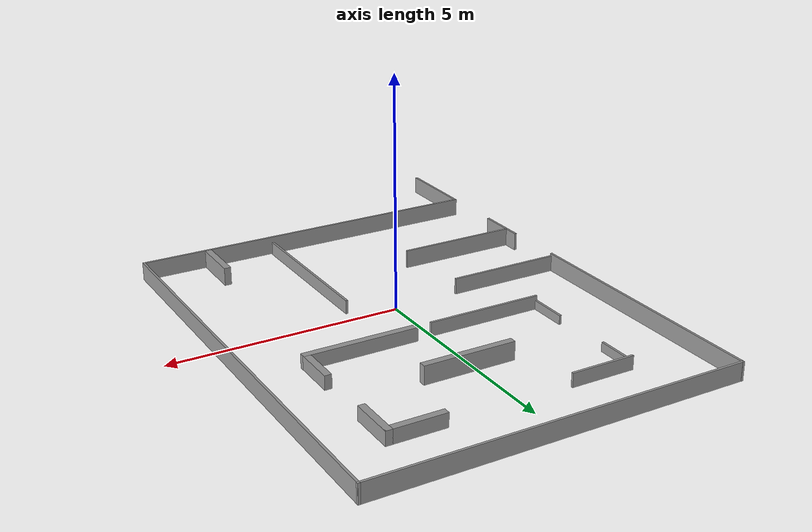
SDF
<?xml version='1.0'?>
<sdf version='1.6'>
  <model name='Labyrinth'>
    <link name='Wall_0'>
      <pose frame=''>0.016546 -4.05212 0 0 0 -0.000316</pose>
      <self_collide>0</self_collide>
      <enable_wind>0</enable_wind>
      <kinematic>1</kinematic>
      <gravity>1</gravity>
      <inertial>
        <mass>1</mass>
        <pose frame=''>0 0 0 0 -0 0</pose>
        <inertia>
          <ixx>1</ixx>
          <ixy>0</ixy>
          <ixz>0</ixz>
          <iyy>1</iyy>
          <iyz>0</iyz>
          <izz>1</izz>
        </inertia>
      </inertial>
      <visual name='Wall_0_Visual'>
        <pose frame=''>0 0 0.2 0 -0 0</pose>
        <geometry>
          <box>
            <size>7.96912 0.05 0.4</size>
          </box>
        </geometry>
        <material>
          <script>
            <uri>file://media/materials/scripts/gazebo.material</uri>
            <name>Gazebo/Grey</name>
          </script>
          <ambient>1 1 1 1</ambient>
          <shader type='vertex'>
            <normal_map>__default__</normal_map>
          </shader>
        </material>
        <meta>
          <layer>0</layer>
        </meta>
        <transparency>0</transparency>
        <cast_shadows>1</cast_shadows>
      </visual>
      <collision name='Wall_0_Collision'>
        <laser_retro>0</laser_retro>
        <max_contacts>10</max_contacts>
        <pose frame=''>0 0 0.2 0 -0 0</pose>
        <geometry>
          <box>
            <size>7.96912 0.05 0.4</size>
          </box>
        </geometry>
        <surface>
          <friction>
            <ode>
              <mu>1</mu>
              <mu2>1</mu2>
              <fdir1>0 0 0</fdir1>
              <slip1>0</slip1>
              <slip2>0</slip2>
            </ode>
            <torsional>
              <coefficient>1</coefficient>
              <patch_radius>0</patch_radius>
              <surface_radius>0</surface_radius>
              <use_patch_radius>1</use_patch_radius>
              <ode>
                <slip>0</slip>
              </ode>
            </torsional>
          </friction>
          <bounce>
            <restitution_coefficient>0</restitution_coefficient>
            <threshold>1e+06</threshold>
          </bounce>
          <contact>
            <collide_without_contact>0</collide_without_contact>
            <collide_without_contact_bitmask>1</collide_without_contact_bitmask>
            <collide_bitmask>1</collide_bitmask>
            <ode>
              <soft_cfm>0</soft_cfm>
              <soft_erp>0.2</soft_erp>
              <kp>1e+13</kp>
              <kd>1</kd>
              <max_vel>0.01</max_vel>
              <min_depth>0</min_depth>
            </ode>
            <bullet>
              <split_impulse>1</split_impulse>
              <split_impulse_penetration_threshold>-0.01</split_impulse_penetration_threshold>
              <soft_cfm>0</soft_cfm>
              <soft_erp>0.2</soft_erp>
              <kp>1e+13</kp>
              <kd>1</kd>
            </bullet>
          </contact>
        </surface>
      </collision>
    </link>
    <link name='Wall_10'>
      <pose frame=''>-2.60801 -1.78987 0 0 -0 0</pose>
      <self_collide>0</self_collide>
      <enable_wind>0</enable_wind>
      <kinematic>1</kinematic>
      <gravity>1</gravity>
      <inertial>
        <mass>1</mass>
        <pose frame=''>0 0 0 0 -0 0</pose>
        <inertia>
          <ixx>1</ixx>
          <ixy>0</ixy>
          <ixz>0</ixz>
          <iyy>1</iyy>
          <iyz>0</iyz>
          <izz>1</izz>
        </inertia>
      </inertial>
      <visual name='Wall_10_Visual'>
        <pose frame=''>0 0 0.2 0 -0 0</pose>
        <geometry>
          <box>
            <size>2.65049 0.05 0.4</size>
          </box>
        </geometry>
        <material>
          <script>
            <uri>file://media/materials/scripts/gazebo.material</uri>
            <name>Gazebo/Grey</name>
          </script>
          <ambient>1 1 1 1</ambient>
          <shader type='vertex'>
            <normal_map>__default__</normal_map>
          </shader>
        </material>
        <meta>
          <layer>0</layer>
        </meta>
        <transparency>0</transparency>
        <cast_shadows>1</cast_shadows>
      </visual>
      <collision name='Wall_10_Collision'>
        <laser_retro>0</laser_retro>
        <max_contacts>10</max_contacts>
        <pose frame=''>0 0 0.2 0 -0 0</pose>
        <geometry>
          <box>
            <size>2.65049 0.05 0.4</size>
          </box>
        </geometry>
        <surface>
          <friction>
            <ode>
              <mu>1</mu>
              <mu2>1</mu2>
              <fdir1>0 0 0</fdir1>
              <slip1>0</slip1>
              <slip2>0</slip2>
            </ode>
            <torsional>
              <coefficient>1</coefficient>
              <patch_radius>0</patch_radius>
              <surface_radius>0</surface_radius>
              <use_patch_radius>1</use_patch_radius>
              <ode>
                <slip>0</slip>
              </ode>
            </torsional>
          </friction>
          <bounce>
            <restitution_coefficient>0</restitution_coefficient>
            <threshold>1e+06</threshold>
          </bounce>
          <contact>
            <collide_without_contact>0</collide_without_contact>
            <collide_without_contact_bitmask>1</collide_without_contact_bitmask>
            <collide_bitmask>1</collide_bitmask>
            <ode>
              <soft_cfm>0</soft_cfm>
              <soft_erp>0.2</soft_erp>
              <kp>1e+13</kp>
              <kd>1</kd>
              <max_vel>0.01</max_vel>
              <min_depth>0</min_depth>
            </ode>
            <bullet>
              <split_impulse>1</split_impulse>
              <split_impulse_penetration_threshold>-0.01</split_impulse_penetration_threshold>
              <soft_cfm>0</soft_cfm>
              <soft_erp>0.2</soft_erp>
              <kp>1e+13</kp>
              <kd>1</kd>
            </bullet>
          </contact>
        </surface>
      </collision>
    </link>
    <link name='Wall_12'>
      <pose frame=''>-1.83302 4.53513 0 0 -0 3.14159</pose>
      <self_collide>0</self_collide>
      <enable_wind>0</enable_wind>
      <kinematic>1</kinematic>
      <gravity>1</gravity>
      <inertial>
        <mass>1</mass>
        <pose frame=''>0 0 0 0 -0 0</pose>
        <inertia>
          <ixx>1</ixx>
          <ixy>0</ixy>
          <ixz>0</ixz>
          <iyy>1</iyy>
          <iyz>0</iyz>
          <izz>1</izz>
        </inertia>
      </inertial>
      <visual name='Wall_12_Visual'>
        <pose frame=''>0 0 0.15 0 -0 0</pose>
        <geometry>
          <box>
            <size>1.4 0.05 0.3</size>
          </box>
        </geometry>
        <material>
          <script>
            <uri>file://media/materials/scripts/gazebo.material</uri>
            <name>Gazebo/Grey</name>
          </script>
          <ambient>1 1 1 1</ambient>
          <shader type='vertex'>
            <normal_map>__default__</normal_map>
          </shader>
        </material>
        <meta>
          <layer>0</layer>
        </meta>
        <transparency>0</transparency>
        <cast_shadows>1</cast_shadows>
      </visual>
      <collision name='Wall_12_Collision'>
        <laser_retro>0</laser_retro>
        <max_contacts>10</max_contacts>
        <pose frame=''>0 0 0.15 0 -0 0</pose>
        <geometry>
          <box>
            <size>1.4 0.05 0.3</size>
          </box>
        </geometry>
        <surface>
          <friction>
            <ode>
              <mu>1</mu>
              <mu2>1</mu2>
              <fdir1>0 0 0</fdir1>
              <slip1>0</slip1>
              <slip2>0</slip2>
            </ode>
            <torsional>
              <coefficient>1</coefficient>
              <patch_radius>0</patch_radius>
              <surface_radius>0</surface_radius>
              <use_patch_radius>1</use_patch_radius>
              <ode>
                <slip>0</slip>
              </ode>
            </torsional>
          </friction>
          <bounce>
            <restitution_coefficient>0</restitution_coefficient>
            <threshold>1e+06</threshold>
          </bounce>
          <contact>
            <collide_without_contact>0</collide_without_contact>
            <collide_without_contact_bitmask>1</collide_without_contact_bitmask>
            <collide_bitmask>1</collide_bitmask>
            <ode>
              <soft_cfm>0</soft_cfm>
              <soft_erp>0.2</soft_erp>
              <kp>1e+13</kp>
              <kd>1</kd>
              <max_vel>0.01</max_vel>
              <min_depth>0</min_depth>
            </ode>
            <bullet>
              <split_impulse>1</split_impulse>
              <split_impulse_penetration_threshold>-0.01</split_impulse_penetration_threshold>
              <soft_cfm>0</soft_cfm>
              <soft_erp>0.2</soft_erp>
              <kp>1e+13</kp>
              <kd>1</kd>
            </bullet>
          </contact>
        </surface>
      </collision>
    </link>
    <link name='Wall_13'>
      <pose frame=''>-2.50801 4.11013 0 0 0 -1.5708</pose>
      <self_collide>0</self_collide>
      <enable_wind>0</enable_wind>
      <kinematic>1</kinematic>
      <gravity>1</gravity>
      <inertial>
        <mass>1</mass>
        <pose frame=''>0 0 0 0 -0 0</pose>
        <inertia>
          <ixx>1</ixx>
          <ixy>0</ixy>
          <ixz>0</ixz>
          <iyy>1</iyy>
          <iyz>0</iyz>
          <izz>1</izz>
        </inertia>
      </inertial>
      <visual name='Wall_13_Visual'>
        <pose frame=''>0 0 0.1 0 -0 0</pose>
        <geometry>
          <box>
            <size>0.9 0.05 0.2</size>
          </box>
        </geometry>
        <material>
          <script>
            <uri>file://media/materials/scripts/gazebo.material</uri>
            <name>Gazebo/Grey</name>
          </script>
          <ambient>1 1 1 1</ambient>
          <shader type='vertex'>
            <normal_map>__default__</normal_map>
          </shader>
        </material>
        <meta>
          <layer>0</layer>
        </meta>
        <transparency>0</transparency>
        <cast_shadows>1</cast_shadows>
      </visual>
      <collision name='Wall_13_Collision'>
        <laser_retro>0</laser_retro>
        <max_contacts>10</max_contacts>
        <pose frame=''>0 0 0.1 0 -0 0</pose>
        <geometry>
          <box>
            <size>0.9 0.05 0.2</size>
          </box>
        </geometry>
        <surface>
          <friction>
            <ode>
              <mu>1</mu>
              <mu2>1</mu2>
              <fdir1>0 0 0</fdir1>
              <slip1>0</slip1>
              <slip2>0</slip2>
            </ode>
            <torsional>
              <coefficient>1</coefficient>
              <patch_radius>0</patch_radius>
              <surface_radius>0</surface_radius>
              <use_patch_radius>1</use_patch_radius>
              <ode>
                <slip>0</slip>
              </ode>
            </torsional>
          </friction>
          <bounce>
            <restitution_coefficient>0</restitution_coefficient>
            <threshold>1e+06</threshold>
          </bounce>
          <contact>
            <collide_without_contact>0</collide_without_contact>
            <collide_without_contact_bitmask>1</collide_without_contact_bitmask>
            <collide_bitmask>1</collide_bitmask>
            <ode>
              <soft_cfm>0</soft_cfm>
              <soft_erp>0.2</soft_erp>
              <kp>1e+13</kp>
              <kd>1</kd>
              <max_vel>0.01</max_vel>
              <min_depth>0</min_depth>
            </ode>
            <bullet>
              <split_impulse>1</split_impulse>
              <split_impulse_penetration_threshold>-0.01</split_impulse_penetration_threshold>
              <soft_cfm>0</soft_cfm>
              <soft_erp>0.2</soft_erp>
              <kp>1e+13</kp>
              <kd>1</kd>
            </bullet>
          </contact>
        </surface>
      </collision>
    </link>
    <link name='Wall_15'>
      <pose frame=''>2.17498 4.55313 0 0 -0 0</pose>
      <self_collide>0</self_collide>
      <enable_wind>0</enable_wind>
      <kinematic>1</kinematic>
      <gravity>1</gravity>
      <inertial>
        <mass>1</mass>
        <pose frame=''>0 0 0 0 -0 0</pose>
        <inertia>
          <ixx>1</ixx>
          <ixy>0</ixy>
          <ixz>0</ixz>
          <iyy>1</iyy>
          <iyz>0</iyz>
          <izz>1</izz>
        </inertia>
      </inertial>
      <visual name='Wall_15_Visual'>
        <pose frame=''>0 0 0.15 0 -0 0</pose>
        <geometry>
          <box>
            <size>1.25 0.15 0.3</size>
          </box>
        </geometry>
        <material>
          <script>
            <uri>file://media/materials/scripts/gazebo.material</uri>
            <name>Gazebo/Grey</name>
          </script>
          <ambient>1 1 1 1</ambient>
          <shader type='vertex'>
            <normal_map>__default__</normal_map>
          </shader>
        </material>
        <meta>
          <layer>0</layer>
        </meta>
        <transparency>0</transparency>
        <cast_shadows>1</cast_shadows>
      </visual>
      <collision name='Wall_15_Collision'>
        <laser_retro>0</laser_retro>
        <max_contacts>10</max_contacts>
        <pose frame=''>0 0 0.15 0 -0 0</pose>
        <geometry>
          <box>
            <size>1.25 0.15 0.3</size>
          </box>
        </geometry>
        <surface>
          <friction>
            <ode>
              <mu>1</mu>
              <mu2>1</mu2>
              <fdir1>0 0 0</fdir1>
              <slip1>0</slip1>
              <slip2>0</slip2>
            </ode>
            <torsional>
              <coefficient>1</coefficient>
              <patch_radius>0</patch_radius>
              <surface_radius>0</surface_radius>
              <use_patch_radius>1</use_patch_radius>
              <ode>
                <slip>0</slip>
              </ode>
            </torsional>
          </friction>
          <bounce>
            <restitution_coefficient>0</restitution_coefficient>
            <threshold>1e+06</threshold>
          </bounce>
          <contact>
            <collide_without_contact>0</collide_without_contact>
            <collide_without_contact_bitmask>1</collide_without_contact_bitmask>
            <collide_bitmask>1</collide_bitmask>
            <ode>
              <soft_cfm>0</soft_cfm>
              <soft_erp>0.2</soft_erp>
              <kp>1e+13</kp>
              <kd>1</kd>
              <max_vel>0.01</max_vel>
              <min_depth>0</min_depth>
            </ode>
            <bullet>
              <split_impulse>1</split_impulse>
              <split_impulse_penetration_threshold>-0.01</split_impulse_penetration_threshold>
              <soft_cfm>0</soft_cfm>
              <soft_erp>0.2</soft_erp>
              <kp>1e+13</kp>
              <kd>1</kd>
            </bullet>
          </contact>
        </surface>
      </collision>
    </link>
    <link name='Wall_16'>
      <pose frame=''>2.72499 4.12813 0 0 0 -1.5708</pose>
      <self_collide>0</self_collide>
      <enable_wind>0</enable_wind>
      <kinematic>1</kinematic>
      <gravity>1</gravity>
      <inertial>
        <mass>1</mass>
        <pose frame=''>0 0 0 0 -0 0</pose>
        <inertia>
          <ixx>1</ixx>
          <ixy>0</ixy>
          <ixz>0</ixz>
          <iyy>1</iyy>
          <iyz>0</iyz>
          <izz>1</izz>
        </inertia>
      </inertial>
      <visual name='Wall_16_Visual'>
        <pose frame=''>0 0 0.15 0 -0 0</pose>
        <geometry>
          <box>
            <size>1 0.15 0.3</size>
          </box>
        </geometry>
        <material>
          <script>
            <uri>file://media/materials/scripts/gazebo.material</uri>
            <name>Gazebo/Grey</name>
          </script>
          <ambient>1 1 1 1</ambient>
          <shader type='vertex'>
            <normal_map>__default__</normal_map>
          </shader>
        </material>
        <meta>
          <layer>0</layer>
        </meta>
        <transparency>0</transparency>
        <cast_shadows>1</cast_shadows>
      </visual>
      <collision name='Wall_16_Collision'>
        <laser_retro>0</laser_retro>
        <max_contacts>10</max_contacts>
        <pose frame=''>0 0 0.15 0 -0 0</pose>
        <geometry>
          <box>
            <size>1 0.15 0.3</size>
          </box>
        </geometry>
        <surface>
          <friction>
            <ode>
              <mu>1</mu>
              <mu2>1</mu2>
              <fdir1>0 0 0</fdir1>
              <slip1>0</slip1>
              <slip2>0</slip2>
            </ode>
            <torsional>
              <coefficient>1</coefficient>
              <patch_radius>0</patch_radius>
              <surface_radius>0</surface_radius>
              <use_patch_radius>1</use_patch_radius>
              <ode>
                <slip>0</slip>
              </ode>
            </torsional>
          </friction>
          <bounce>
            <restitution_coefficient>0</restitution_coefficient>
            <threshold>1e+06</threshold>
          </bounce>
          <contact>
            <collide_without_contact>0</collide_without_contact>
            <collide_without_contact_bitmask>1</collide_without_contact_bitmask>
            <collide_bitmask>1</collide_bitmask>
            <ode>
              <soft_cfm>0</soft_cfm>
              <soft_erp>0.2</soft_erp>
              <kp>1e+13</kp>
              <kd>1</kd>
              <max_vel>0.01</max_vel>
              <min_depth>0</min_depth>
            </ode>
            <bullet>
              <split_impulse>1</split_impulse>
              <split_impulse_penetration_threshold>-0.01</split_impulse_penetration_threshold>
              <soft_cfm>0</soft_cfm>
              <soft_erp>0.2</soft_erp>
              <kp>1e+13</kp>
              <kd>1</kd>
            </bullet>
          </contact>
        </surface>
      </collision>
    </link>
    <link name='Wall_18'>
      <pose frame=''>-1.25802 1.42763 0 0 -0 3.14119</pose>
      <self_collide>0</self_collide>
      <enable_wind>0</enable_wind>
      <kinematic>1</kinematic>
      <gravity>1</gravity>
      <inertial>
        <mass>1</mass>
        <pose frame=''>0 0 0 0 -0 0</pose>
        <inertia>
          <ixx>1</ixx>
          <ixy>0</ixy>
          <ixz>0</ixz>
          <iyy>1</iyy>
          <iyz>0</iyz>
          <izz>1</izz>
        </inertia>
      </inertial>
      <visual name='Wall_18_Visual'>
        <pose frame=''>0 0 0.15 0 -0 0</pose>
        <geometry>
          <box>
            <size>2.546 0.05 0.3</size>
          </box>
        </geometry>
        <material>
          <script>
            <uri>file://media/materials/scripts/gazebo.material</uri>
            <name>Gazebo/Grey</name>
          </script>
          <ambient>1 1 1 1</ambient>
          <shader type='vertex'>
            <normal_map>__default__</normal_map>
          </shader>
        </material>
        <meta>
          <layer>0</layer>
        </meta>
        <transparency>0</transparency>
        <cast_shadows>1</cast_shadows>
      </visual>
      <collision name='Wall_18_Collision'>
        <laser_retro>0</laser_retro>
        <max_contacts>10</max_contacts>
        <pose frame=''>0 0 0.15 0 -0 0</pose>
        <geometry>
          <box>
            <size>2.546 0.05 0.3</size>
          </box>
        </geometry>
        <surface>
          <friction>
            <ode>
              <mu>1</mu>
              <mu2>1</mu2>
              <fdir1>0 0 0</fdir1>
              <slip1>0</slip1>
              <slip2>0</slip2>
            </ode>
            <torsional>
              <coefficient>1</coefficient>
              <patch_radius>0</patch_radius>
              <surface_radius>0</surface_radius>
              <use_patch_radius>1</use_patch_radius>
              <ode>
                <slip>0</slip>
              </ode>
            </torsional>
          </friction>
          <bounce>
            <restitution_coefficient>0</restitution_coefficient>
            <threshold>1e+06</threshold>
          </bounce>
          <contact>
            <collide_without_contact>0</collide_without_contact>
            <collide_without_contact_bitmask>1</collide_without_contact_bitmask>
            <collide_bitmask>1</collide_bitmask>
            <ode>
              <soft_cfm>0</soft_cfm>
              <soft_erp>0.2</soft_erp>
              <kp>1e+13</kp>
              <kd>1</kd>
              <max_vel>0.01</max_vel>
              <min_depth>0</min_depth>
            </ode>
            <bullet>
              <split_impulse>1</split_impulse>
              <split_impulse_penetration_threshold>-0.01</split_impulse_penetration_threshold>
              <soft_cfm>0</soft_cfm>
              <soft_erp>0.2</soft_erp>
              <kp>1e+13</kp>
              <kd>1</kd>
            </bullet>
          </contact>
        </surface>
      </collision>
    </link>
    <link name='Wall_19'>
      <pose frame=''>-2.50602 1.85013 0 0 -0 1.5708</pose>
      <self_collide>0</self_collide>
      <enable_wind>0</enable_wind>
      <kinematic>1</kinematic>
      <gravity>1</gravity>
      <inertial>
        <mass>1</mass>
        <pose frame=''>0 0 0 0 -0 0</pose>
        <inertia>
          <ixx>1</ixx>
          <ixy>0</ixy>
          <ixz>0</ixz>
          <iyy>1</iyy>
          <iyz>0</iyz>
          <izz>1</izz>
        </inertia>
      </inertial>
      <visual name='Wall_19_Visual'>
        <pose frame=''>0 0 0.1 0 -0 0</pose>
        <geometry>
          <box>
            <size>0.894436 0.05 0.2</size>
          </box>
        </geometry>
        <material>
          <script>
            <uri>file://media/materials/scripts/gazebo.material</uri>
            <name>Gazebo/Grey</name>
          </script>
          <ambient>1 1 1 1</ambient>
          <shader type='vertex'>
            <normal_map>__default__</normal_map>
          </shader>
        </material>
        <meta>
          <layer>0</layer>
        </meta>
        <transparency>0</transparency>
        <cast_shadows>1</cast_shadows>
      </visual>
      <collision name='Wall_19_Collision'>
        <laser_retro>0</laser_retro>
        <max_contacts>10</max_contacts>
        <pose frame=''>0 0 0.1 0 -0 0</pose>
        <geometry>
          <box>
            <size>0.894436 0.05 0.2</size>
          </box>
        </geometry>
        <surface>
          <friction>
            <ode>
              <mu>1</mu>
              <mu2>1</mu2>
              <fdir1>0 0 0</fdir1>
              <slip1>0</slip1>
              <slip2>0</slip2>
            </ode>
            <torsional>
              <coefficient>1</coefficient>
              <patch_radius>0</patch_radius>
              <surface_radius>0</surface_radius>
              <use_patch_radius>1</use_patch_radius>
              <ode>
                <slip>0</slip>
              </ode>
            </torsional>
          </friction>
          <bounce>
            <restitution_coefficient>0</restitution_coefficient>
            <threshold>1e+06</threshold>
          </bounce>
          <contact>
            <collide_without_contact>0</collide_without_contact>
            <collide_without_contact_bitmask>1</collide_without_contact_bitmask>
            <collide_bitmask>1</collide_bitmask>
            <ode>
              <soft_cfm>0</soft_cfm>
              <soft_erp>0.2</soft_erp>
              <kp>1e+13</kp>
              <kd>1</kd>
              <max_vel>0.01</max_vel>
              <min_depth>0</min_depth>
            </ode>
            <bullet>
              <split_impulse>1</split_impulse>
              <split_impulse_penetration_threshold>-0.01</split_impulse_penetration_threshold>
              <soft_cfm>0</soft_cfm>
              <soft_erp>0.2</soft_erp>
              <kp>1e+13</kp>
              <kd>1</kd>
            </bullet>
          </contact>
        </surface>
      </collision>
    </link>
    <link name='Wall_21'>
      <pose frame=''>1.57299 1.42963 0 0 -0 0.001292</pose>
      <self_collide>0</self_collide>
      <enable_wind>0</enable_wind>
      <kinematic>1</kinematic>
      <gravity>1</gravity>
      <inertial>
        <mass>1</mass>
        <pose frame=''>0 0 0 0 -0 0</pose>
        <inertia>
          <ixx>1</ixx>
          <ixy>0</ixy>
          <ixz>0</ixz>
          <iyy>1</iyy>
          <iyz>0</iyz>
          <izz>1</izz>
        </inertia>
      </inertial>
      <visual name='Wall_21_Visual'>
        <pose frame=''>0 0 0.15 0 -0 0</pose>
        <geometry>
          <box>
            <size>2.47225 0.15 0.3</size>
          </box>
        </geometry>
        <material>
          <script>
            <uri>file://media/materials/scripts/gazebo.material</uri>
            <name>Gazebo/Grey</name>
          </script>
          <ambient>1 1 1 1</ambient>
          <shader type='vertex'>
            <normal_map>__default__</normal_map>
          </shader>
        </material>
        <meta>
          <layer>0</layer>
        </meta>
        <transparency>0</transparency>
        <cast_shadows>1</cast_shadows>
      </visual>
      <collision name='Wall_21_Collision'>
        <laser_retro>0</laser_retro>
        <max_contacts>10</max_contacts>
        <pose frame=''>0 0 0.15 0 -0 0</pose>
        <geometry>
          <box>
            <size>2.47225 0.15 0.3</size>
          </box>
        </geometry>
        <surface>
          <friction>
            <ode>
              <mu>1</mu>
              <mu2>1</mu2>
              <fdir1>0 0 0</fdir1>
              <slip1>0</slip1>
              <slip2>0</slip2>
            </ode>
            <torsional>
              <coefficient>1</coefficient>
              <patch_radius>0</patch_radius>
              <surface_radius>0</surface_radius>
              <use_patch_radius>1</use_patch_radius>
              <ode>
                <slip>0</slip>
              </ode>
            </torsional>
          </friction>
          <bounce>
            <restitution_coefficient>0</restitution_coefficient>
            <threshold>1e+06</threshold>
          </bounce>
          <contact>
            <collide_without_contact>0</collide_without_contact>
            <collide_without_contact_bitmask>1</collide_without_contact_bitmask>
            <collide_bitmask>1</collide_bitmask>
            <ode>
              <soft_cfm>0</soft_cfm>
              <soft_erp>0.2</soft_erp>
              <kp>1e+13</kp>
              <kd>1</kd>
              <max_vel>0.01</max_vel>
              <min_depth>0</min_depth>
            </ode>
            <bullet>
              <split_impulse>1</split_impulse>
              <split_impulse_penetration_threshold>-0.01</split_impulse_penetration_threshold>
              <soft_cfm>0</soft_cfm>
              <soft_erp>0.2</soft_erp>
              <kp>1e+13</kp>
              <kd>1</kd>
            </bullet>
          </contact>
        </surface>
      </collision>
    </link>
    <link name='Wall_22'>
      <pose frame=''>2.73549 1.86513 0 0 -0 1.56734</pose>
      <self_collide>0</self_collide>
      <enable_wind>0</enable_wind>
      <kinematic>1</kinematic>
      <gravity>1</gravity>
      <inertial>
        <mass>1</mass>
        <pose frame=''>0 0 0 0 -0 0</pose>
        <inertia>
          <ixx>1</ixx>
          <ixy>0</ixy>
          <ixz>0</ixz>
          <iyy>1</iyy>
          <iyz>0</iyz>
          <izz>1</izz>
        </inertia>
      </inertial>
      <visual name='Wall_22_Visual'>
        <pose frame=''>0 0 0.15 0 -0 0</pose>
        <geometry>
          <box>
            <size>1.0175 0.15 0.3</size>
          </box>
        </geometry>
        <material>
          <script>
            <uri>file://media/materials/scripts/gazebo.material</uri>
            <name>Gazebo/Grey</name>
          </script>
          <ambient>1 1 1 1</ambient>
          <shader type='vertex'>
            <normal_map>__default__</normal_map>
          </shader>
        </material>
        <meta>
          <layer>0</layer>
        </meta>
        <transparency>0</transparency>
        <cast_shadows>1</cast_shadows>
      </visual>
      <collision name='Wall_22_Collision'>
        <laser_retro>0</laser_retro>
        <max_contacts>10</max_contacts>
        <pose frame=''>0 0 0.15 0 -0 0</pose>
        <geometry>
          <box>
            <size>1.0175 0.15 0.3</size>
          </box>
        </geometry>
        <surface>
          <friction>
            <ode>
              <mu>1</mu>
              <mu2>1</mu2>
              <fdir1>0 0 0</fdir1>
              <slip1>0</slip1>
              <slip2>0</slip2>
            </ode>
            <torsional>
              <coefficient>1</coefficient>
              <patch_radius>0</patch_radius>
              <surface_radius>0</surface_radius>
              <use_patch_radius>1</use_patch_radius>
              <ode>
                <slip>0</slip>
              </ode>
            </torsional>
          </friction>
          <bounce>
            <restitution_coefficient>0</restitution_coefficient>
            <threshold>1e+06</threshold>
          </bounce>
          <contact>
            <collide_without_contact>0</collide_without_contact>
            <collide_without_contact_bitmask>1</collide_without_contact_bitmask>
            <collide_bitmask>1</collide_bitmask>
            <ode>
              <soft_cfm>0</soft_cfm>
              <soft_erp>0.2</soft_erp>
              <kp>1e+13</kp>
              <kd>1</kd>
              <max_vel>0.01</max_vel>
              <min_depth>0</min_depth>
            </ode>
            <bullet>
              <split_impulse>1</split_impulse>
              <split_impulse_penetration_threshold>-0.01</split_impulse_penetration_threshold>
              <soft_cfm>0</soft_cfm>
              <soft_erp>0.2</soft_erp>
              <kp>1e+13</kp>
              <kd>1</kd>
            </bullet>
          </contact>
        </surface>
      </collision>
    </link>
    <link name='Wall_24'>
      <pose frame=''>0.158985 3.04213 0 0 -0 3.14159</pose>
      <self_collide>0</self_collide>
      <enable_wind>0</enable_wind>
      <kinematic>1</kinematic>
      <gravity>1</gravity>
      <inertial>
        <mass>1</mass>
        <pose frame=''>0 0 0 0 -0 0</pose>
        <inertia>
          <ixx>1</ixx>
          <ixy>0</ixy>
          <ixz>0</ixz>
          <iyy>1</iyy>
          <iyz>0</iyz>
          <izz>1</izz>
        </inertia>
      </inertial>
      <visual name='Wall_24_Visual'>
        <pose frame=''>0 0 0.2 0 -0 0</pose>
        <geometry>
          <box>
            <size>2 0.15 0.4</size>
          </box>
        </geometry>
        <material>
          <script>
            <uri>file://media/materials/scripts/gazebo.material</uri>
            <name>Gazebo/Grey</name>
          </script>
          <ambient>1 1 1 1</ambient>
          <shader type='vertex'>
            <normal_map>__default__</normal_map>
          </shader>
        </material>
        <meta>
          <layer>0</layer>
        </meta>
        <transparency>0</transparency>
        <cast_shadows>1</cast_shadows>
      </visual>
      <collision name='Wall_24_Collision'>
        <laser_retro>0</laser_retro>
        <max_contacts>10</max_contacts>
        <pose frame=''>0 0 0.2 0 -0 0</pose>
        <geometry>
          <box>
            <size>2 0.15 0.4</size>
          </box>
        </geometry>
        <surface>
          <friction>
            <ode>
              <mu>1</mu>
              <mu2>1</mu2>
              <fdir1>0 0 0</fdir1>
              <slip1>0</slip1>
              <slip2>0</slip2>
            </ode>
            <torsional>
              <coefficient>1</coefficient>
              <patch_radius>0</patch_radius>
              <surface_radius>0</surface_radius>
              <use_patch_radius>1</use_patch_radius>
              <ode>
                <slip>0</slip>
              </ode>
            </torsional>
          </friction>
          <bounce>
            <restitution_coefficient>0</restitution_coefficient>
            <threshold>1e+06</threshold>
          </bounce>
          <contact>
            <collide_without_contact>0</collide_without_contact>
            <collide_without_contact_bitmask>1</collide_without_contact_bitmask>
            <collide_bitmask>1</collide_bitmask>
            <ode>
              <soft_cfm>0</soft_cfm>
              <soft_erp>0.2</soft_erp>
              <kp>1e+13</kp>
              <kd>1</kd>
              <max_vel>0.01</max_vel>
              <min_depth>0</min_depth>
            </ode>
            <bullet>
              <split_impulse>1</split_impulse>
              <split_impulse_penetration_threshold>-0.01</split_impulse_penetration_threshold>
              <soft_cfm>0</soft_cfm>
              <soft_erp>0.2</soft_erp>
              <kp>1e+13</kp>
              <kd>1</kd>
            </bullet>
          </contact>
        </surface>
      </collision>
    </link>
    <link name='Wall_26'>
      <pose frame=''>0.971985 -2.13787 0 0 0 -1.5708</pose>
      <self_collide>0</self_collide>
      <enable_wind>0</enable_wind>
      <kinematic>1</kinematic>
      <gravity>1</gravity>
      <inertial>
        <mass>1</mass>
        <pose frame=''>0 0 0 0 -0 0</pose>
        <inertia>
          <ixx>1</ixx>
          <ixy>0</ixy>
          <ixz>0</ixz>
          <iyy>1</iyy>
          <iyz>0</iyz>
          <izz>1</izz>
        </inertia>
      </inertial>
      <visual name='Wall_26_Visual'>
        <pose frame=''>0 0 0.15 0 -0 0</pose>
        <geometry>
          <box>
            <size>3.65018 0.05 0.3</size>
          </box>
        </geometry>
        <material>
          <script>
            <uri>file://media/materials/scripts/gazebo.material</uri>
            <name>Gazebo/Grey</name>
          </script>
          <ambient>1 1 1 1</ambient>
          <shader type='vertex'>
            <normal_map>__default__</normal_map>
          </shader>
        </material>
        <meta>
          <layer>0</layer>
        </meta>
        <transparency>0</transparency>
        <cast_shadows>1</cast_shadows>
      </visual>
      <collision name='Wall_26_Collision'>
        <laser_retro>0</laser_retro>
        <max_contacts>10</max_contacts>
        <pose frame=''>0 0 0.15 0 -0 0</pose>
        <geometry>
          <box>
            <size>3.65018 0.05 0.3</size>
          </box>
        </geometry>
        <surface>
          <friction>
            <ode>
              <mu>1</mu>
              <mu2>1</mu2>
              <fdir1>0 0 0</fdir1>
              <slip1>0</slip1>
              <slip2>0</slip2>
            </ode>
            <torsional>
              <coefficient>1</coefficient>
              <patch_radius>0</patch_radius>
              <surface_radius>0</surface_radius>
              <use_patch_radius>1</use_patch_radius>
              <ode>
                <slip>0</slip>
              </ode>
            </torsional>
          </friction>
          <bounce>
            <restitution_coefficient>0</restitution_coefficient>
            <threshold>1e+06</threshold>
          </bounce>
          <contact>
            <collide_without_contact>0</collide_without_contact>
            <collide_without_contact_bitmask>1</collide_without_contact_bitmask>
            <collide_bitmask>1</collide_bitmask>
            <ode>
              <soft_cfm>0</soft_cfm>
              <soft_erp>0.2</soft_erp>
              <kp>1e+13</kp>
              <kd>1</kd>
              <max_vel>0.01</max_vel>
              <min_depth>0</min_depth>
            </ode>
            <bullet>
              <split_impulse>1</split_impulse>
              <split_impulse_penetration_threshold>-0.01</split_impulse_penetration_threshold>
              <soft_cfm>0</soft_cfm>
              <soft_erp>0.2</soft_erp>
              <kp>1e+13</kp>
              <kd>1</kd>
            </bullet>
          </contact>
        </surface>
      </collision>
    </link>
    <link name='Wall_28'>
      <pose frame=''>2.51148 -3.45737 0 0 0 -1.57796</pose>
      <self_collide>0</self_collide>
      <enable_wind>0</enable_wind>
      <kinematic>1</kinematic>
      <gravity>1</gravity>
      <inertial>
        <mass>1</mass>
        <pose frame=''>0 0 0 0 -0 0</pose>
        <inertia>
          <ixx>1</ixx>
          <ixy>0</ixy>
          <ixz>0</ixz>
          <iyy>1</iyy>
          <iyz>0</iyz>
          <izz>1</izz>
        </inertia>
      </inertial>
      <visual name='Wall_28_Visual'>
        <pose frame=''>0 0 0.2 0 -0 0</pose>
        <geometry>
          <box>
            <size>1.12681 0.15 0.4</size>
          </box>
        </geometry>
        <material>
          <script>
            <uri>file://media/materials/scripts/gazebo.material</uri>
            <name>Gazebo/Grey</name>
          </script>
          <ambient>1 1 1 1</ambient>
          <shader type='vertex'>
            <normal_map>__default__</normal_map>
          </shader>
        </material>
        <meta>
          <layer>0</layer>
        </meta>
        <transparency>0</transparency>
        <cast_shadows>1</cast_shadows>
      </visual>
      <collision name='Wall_28_Collision'>
        <laser_retro>0</laser_retro>
        <max_contacts>10</max_contacts>
        <pose frame=''>0 0 0.2 0 -0 0</pose>
        <geometry>
          <box>
            <size>1.12681 0.15 0.4</size>
          </box>
        </geometry>
        <surface>
          <friction>
            <ode>
              <mu>1</mu>
              <mu2>1</mu2>
              <fdir1>0 0 0</fdir1>
              <slip1>0</slip1>
              <slip2>0</slip2>
            </ode>
            <torsional>
              <coefficient>1</coefficient>
              <patch_radius>0</patch_radius>
              <surface_radius>0</surface_radius>
              <use_patch_radius>1</use_patch_radius>
              <ode>
                <slip>0</slip>
              </ode>
            </torsional>
          </friction>
          <bounce>
            <restitution_coefficient>0</restitution_coefficient>
            <threshold>1e+06</threshold>
          </bounce>
          <contact>
            <collide_without_contact>0</collide_without_contact>
            <collide_without_contact_bitmask>1</collide_without_contact_bitmask>
            <collide_bitmask>1</collide_bitmask>
            <ode>
              <soft_cfm>0</soft_cfm>
              <soft_erp>0.2</soft_erp>
              <kp>1e+13</kp>
              <kd>1</kd>
              <max_vel>0.01</max_vel>
              <min_depth>0</min_depth>
            </ode>
            <bullet>
              <split_impulse>1</split_impulse>
              <split_impulse_penetration_threshold>-0.01</split_impulse_penetration_threshold>
              <soft_cfm>0</soft_cfm>
              <soft_erp>0.2</soft_erp>
              <kp>1e+13</kp>
              <kd>1</kd>
            </bullet>
          </contact>
        </surface>
      </collision>
    </link>
    <link name='Wall_3'>
      <pose frame=''>3.97531 0.923721 0 0 -0 1.57096</pose>
      <self_collide>0</self_collide>
      <enable_wind>0</enable_wind>
      <kinematic>1</kinematic>
      <gravity>1</gravity>
      <inertial>
        <mass>1</mass>
        <pose frame=''>0 0 0 0 -0 0</pose>
        <inertia>
          <ixx>1</ixx>
          <ixy>0</ixy>
          <ixz>0</ixz>
          <iyy>1</iyy>
          <iyz>0</iyz>
          <izz>1</izz>
        </inertia>
      </inertial>
      <visual name='Wall_3_Visual'>
        <pose frame=''>0 0 0.2 0 -0 0</pose>
        <geometry>
          <box>
            <size>10.0042 0.05 0.4</size>
          </box>
        </geometry>
        <material>
          <script>
            <uri>file://media/materials/scripts/gazebo.material</uri>
            <name>Gazebo/Grey</name>
          </script>
          <ambient>1 1 1 1</ambient>
          <shader type='vertex'>
            <normal_map>__default__</normal_map>
          </shader>
        </material>
        <meta>
          <layer>0</layer>
        </meta>
        <transparency>0</transparency>
        <cast_shadows>1</cast_shadows>
      </visual>
      <collision name='Wall_3_Collision'>
        <laser_retro>0</laser_retro>
        <max_contacts>10</max_contacts>
        <pose frame=''>0 0 0.2 0 -0 0</pose>
        <geometry>
          <box>
            <size>10.0042 0.05 0.4</size>
          </box>
        </geometry>
        <surface>
          <friction>
            <ode>
              <mu>1</mu>
              <mu2>1</mu2>
              <fdir1>0 0 0</fdir1>
              <slip1>0</slip1>
              <slip2>0</slip2>
            </ode>
            <torsional>
              <coefficient>1</coefficient>
              <patch_radius>0</patch_radius>
              <surface_radius>0</surface_radius>
              <use_patch_radius>1</use_patch_radius>
              <ode>
                <slip>0</slip>
              </ode>
            </torsional>
          </friction>
          <bounce>
            <restitution_coefficient>0</restitution_coefficient>
            <threshold>1e+06</threshold>
          </bounce>
          <contact>
            <collide_without_contact>0</collide_without_contact>
            <collide_without_contact_bitmask>1</collide_without_contact_bitmask>
            <collide_bitmask>1</collide_bitmask>
            <ode>
              <soft_cfm>0</soft_cfm>
              <soft_erp>0.2</soft_erp>
              <kp>1e+13</kp>
              <kd>1</kd>
              <max_vel>0.01</max_vel>
              <min_depth>0</min_depth>
            </ode>
            <bullet>
              <split_impulse>1</split_impulse>
              <split_impulse_penetration_threshold>-0.01</split_impulse_penetration_threshold>
              <soft_cfm>0</soft_cfm>
              <soft_erp>0.2</soft_erp>
              <kp>1e+13</kp>
              <kd>1</kd>
            </bullet>
          </contact>
        </surface>
      </collision>
    </link>
    <link name='Wall_30'>
      <pose frame=''>-3.94301 -4.97587 0 0 0 -1.5708</pose>
      <self_collide>0</self_collide>
      <enable_wind>0</enable_wind>
      <kinematic>1</kinematic>
      <gravity>1</gravity>
      <inertial>
        <mass>1</mass>
        <pose frame=''>0 0 0 0 -0 0</pose>
        <inertia>
          <ixx>1</ixx>
          <ixy>0</ixy>
          <ixz>0</ixz>
          <iyy>1</iyy>
          <iyz>0</iyz>
          <izz>1</izz>
        </inertia>
      </inertial>
      <visual name='Wall_30_Visual'>
        <pose frame=''>0 0 0.2 0 -0 0</pose>
        <geometry>
          <box>
            <size>1.8999 0.05 0.4</size>
          </box>
        </geometry>
        <material>
          <script>
            <uri>file://media/materials/scripts/gazebo.material</uri>
            <name>Gazebo/Grey</name>
          </script>
          <ambient>1 1 1 1</ambient>
          <shader type='vertex'>
            <normal_map>__default__</normal_map>
          </shader>
        </material>
        <meta>
          <layer>0</layer>
        </meta>
        <transparency>0</transparency>
        <cast_shadows>1</cast_shadows>
      </visual>
      <collision name='Wall_30_Collision'>
        <laser_retro>0</laser_retro>
        <max_contacts>10</max_contacts>
        <pose frame=''>0 0 0.2 0 -0 0</pose>
        <geometry>
          <box>
            <size>1.8999 0.05 0.4</size>
          </box>
        </geometry>
        <surface>
          <friction>
            <ode>
              <mu>1</mu>
              <mu2>1</mu2>
              <fdir1>0 0 0</fdir1>
              <slip1>0</slip1>
              <slip2>0</slip2>
            </ode>
            <torsional>
              <coefficient>1</coefficient>
              <patch_radius>0</patch_radius>
              <surface_radius>0</surface_radius>
              <use_patch_radius>1</use_patch_radius>
              <ode>
                <slip>0</slip>
              </ode>
            </torsional>
          </friction>
          <bounce>
            <restitution_coefficient>0</restitution_coefficient>
            <threshold>1e+06</threshold>
          </bounce>
          <contact>
            <collide_without_contact>0</collide_without_contact>
            <collide_without_contact_bitmask>1</collide_without_contact_bitmask>
            <collide_bitmask>1</collide_bitmask>
            <ode>
              <soft_cfm>0</soft_cfm>
              <soft_erp>0.2</soft_erp>
              <kp>1e+13</kp>
              <kd>1</kd>
              <max_vel>0.01</max_vel>
              <min_depth>0</min_depth>
            </ode>
            <bullet>
              <split_impulse>1</split_impulse>
              <split_impulse_penetration_threshold>-0.01</split_impulse_penetration_threshold>
              <soft_cfm>0</soft_cfm>
              <soft_erp>0.2</soft_erp>
              <kp>1e+13</kp>
              <kd>1</kd>
            </bullet>
          </contact>
        </surface>
      </collision>
    </link>
    <link name='Wall_4'>
      <pose frame=''>1.6e-05 5.89799 0 0 0 -3.14135</pose>
      <self_collide>0</self_collide>
      <enable_wind>0</enable_wind>
      <kinematic>1</kinematic>
      <gravity>1</gravity>
      <inertial>
        <mass>1</mass>
        <pose frame=''>0 0 0 0 -0 0</pose>
        <inertia>
          <ixx>1</ixx>
          <ixy>0</ixy>
          <ixz>0</ixz>
          <iyy>1</iyy>
          <iyz>0</iyz>
          <izz>1</izz>
        </inertia>
      </inertial>
      <visual name='Wall_4_Visual'>
        <pose frame=''>0 0 0.2 0 -0 0</pose>
        <geometry>
          <box>
            <size>8.00272 0.05 0.4</size>
          </box>
        </geometry>
        <material>
          <script>
            <uri>file://media/materials/scripts/gazebo.material</uri>
            <name>Gazebo/Grey</name>
          </script>
          <ambient>1 1 1 1</ambient>
          <shader type='vertex'>
            <normal_map>__default__</normal_map>
          </shader>
        </material>
        <meta>
          <layer>0</layer>
        </meta>
        <transparency>0</transparency>
        <cast_shadows>1</cast_shadows>
      </visual>
      <collision name='Wall_4_Collision'>
        <laser_retro>0</laser_retro>
        <max_contacts>10</max_contacts>
        <pose frame=''>0 0 0.2 0 -0 0</pose>
        <geometry>
          <box>
            <size>8.00272 0.05 0.4</size>
          </box>
        </geometry>
        <surface>
          <friction>
            <ode>
              <mu>1</mu>
              <mu2>1</mu2>
              <fdir1>0 0 0</fdir1>
              <slip1>0</slip1>
              <slip2>0</slip2>
            </ode>
            <torsional>
              <coefficient>1</coefficient>
              <patch_radius>0</patch_radius>
              <surface_radius>0</surface_radius>
              <use_patch_radius>1</use_patch_radius>
              <ode>
                <slip>0</slip>
              </ode>
            </torsional>
          </friction>
          <bounce>
            <restitution_coefficient>0</restitution_coefficient>
            <threshold>1e+06</threshold>
          </bounce>
          <contact>
            <collide_without_contact>0</collide_without_contact>
            <collide_without_contact_bitmask>1</collide_without_contact_bitmask>
            <collide_bitmask>1</collide_bitmask>
            <ode>
              <soft_cfm>0</soft_cfm>
              <soft_erp>0.2</soft_erp>
              <kp>1e+13</kp>
              <kd>1</kd>
              <max_vel>0.01</max_vel>
              <min_depth>0</min_depth>
            </ode>
            <bullet>
              <split_impulse>1</split_impulse>
              <split_impulse_penetration_threshold>-0.01</split_impulse_penetration_threshold>
              <soft_cfm>0</soft_cfm>
              <soft_erp>0.2</soft_erp>
              <kp>1e+13</kp>
              <kd>1</kd>
            </bullet>
          </contact>
        </surface>
      </collision>
    </link>
    <link name='Wall_5'>
      <pose frame=''>-3.97164 2.92964 0 0 0 -1.56921</pose>
      <self_collide>0</self_collide>
      <enable_wind>0</enable_wind>
      <kinematic>1</kinematic>
      <gravity>1</gravity>
      <inertial>
        <mass>1</mass>
        <pose frame=''>0 0 0 0 -0 0</pose>
        <inertia>
          <ixx>1</ixx>
          <ixy>0</ixy>
          <ixz>0</ixz>
          <iyy>1</iyy>
          <iyz>0</iyz>
          <izz>1</izz>
        </inertia>
      </inertial>
      <visual name='Wall_5_Visual'>
        <pose frame=''>0 0 0.2 0 -0 0</pose>
        <geometry>
          <box>
            <size>5.99128 0.05 0.4</size>
          </box>
        </geometry>
        <material>
          <script>
            <uri>file://media/materials/scripts/gazebo.material</uri>
            <name>Gazebo/Grey</name>
          </script>
          <ambient>1 1 1 1</ambient>
          <shader type='vertex'>
            <normal_map>__default__</normal_map>
          </shader>
        </material>
        <meta>
          <layer>0</layer>
        </meta>
        <transparency>0</transparency>
        <cast_shadows>1</cast_shadows>
      </visual>
      <collision name='Wall_5_Collision'>
        <laser_retro>0</laser_retro>
        <max_contacts>10</max_contacts>
        <pose frame=''>0 0 0.2 0 -0 0</pose>
        <geometry>
          <box>
            <size>5.99128 0.05 0.4</size>
          </box>
        </geometry>
        <surface>
          <friction>
            <ode>
              <mu>1</mu>
              <mu2>1</mu2>
              <fdir1>0 0 0</fdir1>
              <slip1>0</slip1>
              <slip2>0</slip2>
            </ode>
            <torsional>
              <coefficient>1</coefficient>
              <patch_radius>0</patch_radius>
              <surface_radius>0</surface_radius>
              <use_patch_radius>1</use_patch_radius>
              <ode>
                <slip>0</slip>
              </ode>
            </torsional>
          </friction>
          <bounce>
            <restitution_coefficient>0</restitution_coefficient>
            <threshold>1e+06</threshold>
          </bounce>
          <contact>
            <collide_without_contact>0</collide_without_contact>
            <collide_without_contact_bitmask>1</collide_without_contact_bitmask>
            <collide_bitmask>1</collide_bitmask>
            <ode>
              <soft_cfm>0</soft_cfm>
              <soft_erp>0.2</soft_erp>
              <kp>1e+13</kp>
              <kd>1</kd>
              <max_vel>0.01</max_vel>
              <min_depth>0</min_depth>
            </ode>
            <bullet>
              <split_impulse>1</split_impulse>
              <split_impulse_penetration_threshold>-0.01</split_impulse_penetration_threshold>
              <soft_cfm>0</soft_cfm>
              <soft_erp>0.2</soft_erp>
              <kp>1e+13</kp>
              <kd>1</kd>
            </bullet>
          </contact>
        </surface>
      </collision>
    </link>
    <link name='Wall_6'>
      <pose frame=''>-2.73282 -0.040545 0 0 -0 0.000365</pose>
      <self_collide>0</self_collide>
      <enable_wind>0</enable_wind>
      <kinematic>1</kinematic>
      <gravity>1</gravity>
      <inertial>
        <mass>1</mass>
        <pose frame=''>0 0 0 0 -0 0</pose>
        <inertia>
          <ixx>1</ixx>
          <ixy>0</ixy>
          <ixz>0</ixz>
          <iyy>1</iyy>
          <iyz>0</iyz>
          <izz>1</izz>
        </inertia>
      </inertial>
      <visual name='Wall_6_Visual'>
        <pose frame=''>0 0 0.175 0 -0 0</pose>
        <geometry>
          <box>
            <size>2.52961 0.05 0.35</size>
          </box>
        </geometry>
        <material>
          <script>
            <uri>file://media/materials/scripts/gazebo.material</uri>
            <name>Gazebo/Grey</name>
          </script>
          <ambient>1 1 1 1</ambient>
          <shader type='vertex'>
            <normal_map>__default__</normal_map>
          </shader>
        </material>
        <meta>
          <layer>0</layer>
        </meta>
        <transparency>0</transparency>
        <cast_shadows>1</cast_shadows>
      </visual>
      <collision name='Wall_6_Collision'>
        <laser_retro>0</laser_retro>
        <max_contacts>10</max_contacts>
        <pose frame=''>0 0 0.175 0 -0 0</pose>
        <geometry>
          <box>
            <size>2.52961 0.05 0.35</size>
          </box>
        </geometry>
        <surface>
          <friction>
            <ode>
              <mu>1</mu>
              <mu2>1</mu2>
              <fdir1>0 0 0</fdir1>
              <slip1>0</slip1>
              <slip2>0</slip2>
            </ode>
            <torsional>
              <coefficient>1</coefficient>
              <patch_radius>0</patch_radius>
              <surface_radius>0</surface_radius>
              <use_patch_radius>1</use_patch_radius>
              <ode>
                <slip>0</slip>
              </ode>
            </torsional>
          </friction>
          <bounce>
            <restitution_coefficient>0</restitution_coefficient>
            <threshold>1e+06</threshold>
          </bounce>
          <contact>
            <collide_without_contact>0</collide_without_contact>
            <collide_without_contact_bitmask>1</collide_without_contact_bitmask>
            <collide_bitmask>1</collide_bitmask>
            <ode>
              <soft_cfm>0</soft_cfm>
              <soft_erp>0.2</soft_erp>
              <kp>1e+13</kp>
              <kd>1</kd>
              <max_vel>0.01</max_vel>
              <min_depth>0</min_depth>
            </ode>
            <bullet>
              <split_impulse>1</split_impulse>
              <split_impulse_penetration_threshold>-0.01</split_impulse_penetration_threshold>
              <soft_cfm>0</soft_cfm>
              <soft_erp>0.2</soft_erp>
              <kp>1e+13</kp>
              <kd>1</kd>
            </bullet>
          </contact>
        </surface>
      </collision>
    </link>
    <link name='Wall_8'>
      <pose frame=''>-3.94801 -1.99287 0 0 0 -1.5708</pose>
      <self_collide>0</self_collide>
      <enable_wind>0</enable_wind>
      <kinematic>1</kinematic>
      <gravity>1</gravity>
      <inertial>
        <mass>1</mass>
        <pose frame=''>0 0 0 0 -0 0</pose>
        <inertia>
          <ixx>1</ixx>
          <ixy>0</ixy>
          <ixz>0</ixz>
          <iyy>1</iyy>
          <iyz>0</iyz>
          <izz>1</izz>
        </inertia>
      </inertial>
      <visual name='Wall_8_Visual'>
        <pose frame=''>0 0 0.2 0 -0 0</pose>
        <geometry>
          <box>
            <size>1.14966 0.05 0.4</size>
          </box>
        </geometry>
        <material>
          <script>
            <uri>file://media/materials/scripts/gazebo.material</uri>
            <name>Gazebo/Grey</name>
          </script>
          <ambient>1 1 1 1</ambient>
          <shader type='vertex'>
            <normal_map>__default__</normal_map>
          </shader>
        </material>
        <meta>
          <layer>0</layer>
        </meta>
        <transparency>0</transparency>
        <cast_shadows>1</cast_shadows>
      </visual>
      <collision name='Wall_8_Collision'>
        <laser_retro>0</laser_retro>
        <max_contacts>10</max_contacts>
        <pose frame=''>0 0 0.2 0 -0 0</pose>
        <geometry>
          <box>
            <size>1.14966 0.05 0.4</size>
          </box>
        </geometry>
        <surface>
          <friction>
            <ode>
              <mu>1</mu>
              <mu2>1</mu2>
              <fdir1>0 0 0</fdir1>
              <slip1>0</slip1>
              <slip2>0</slip2>
            </ode>
            <torsional>
              <coefficient>1</coefficient>
              <patch_radius>0</patch_radius>
              <surface_radius>0</surface_radius>
              <use_patch_radius>1</use_patch_radius>
              <ode>
                <slip>0</slip>
              </ode>
            </torsional>
          </friction>
          <bounce>
            <restitution_coefficient>0</restitution_coefficient>
            <threshold>1e+06</threshold>
          </bounce>
          <contact>
            <collide_without_contact>0</collide_without_contact>
            <collide_without_contact_bitmask>1</collide_without_contact_bitmask>
            <collide_bitmask>1</collide_bitmask>
            <ode>
              <soft_cfm>0</soft_cfm>
              <soft_erp>0.2</soft_erp>
              <kp>1e+13</kp>
              <kd>1</kd>
              <max_vel>0.01</max_vel>
              <min_depth>0</min_depth>
            </ode>
            <bullet>
              <split_impulse>1</split_impulse>
              <split_impulse_penetration_threshold>-0.01</split_impulse_penetration_threshold>
              <soft_cfm>0</soft_cfm>
              <soft_erp>0.2</soft_erp>
              <kp>1e+13</kp>
              <kd>1</kd>
            </bullet>
          </contact>
        </surface>
      </collision>
    </link>
    <static>0</static>
    <allow_auto_disable>1</allow_auto_disable>
  </model>
</sdf>
